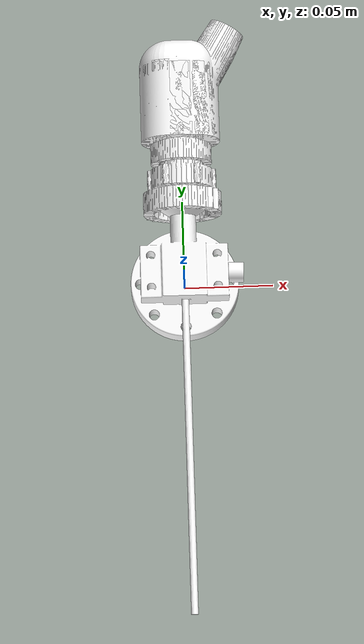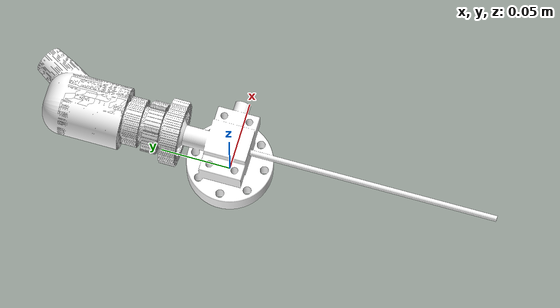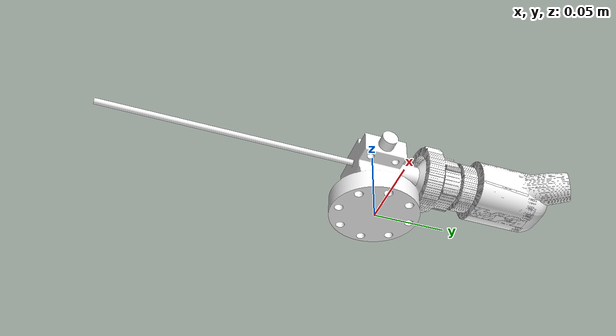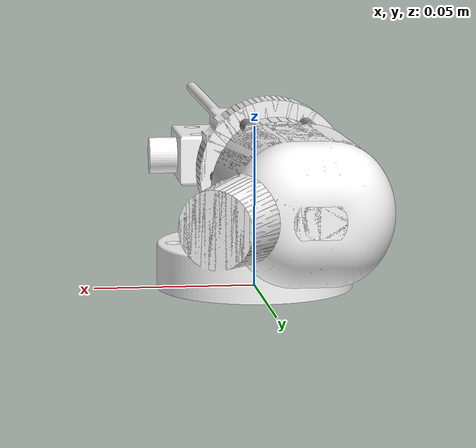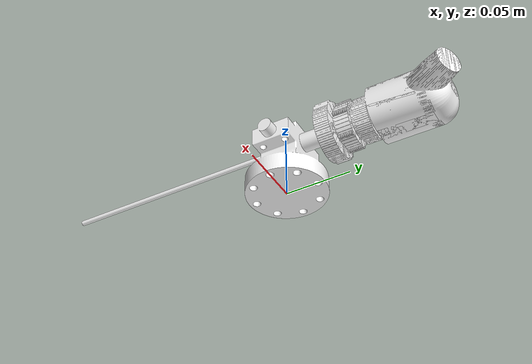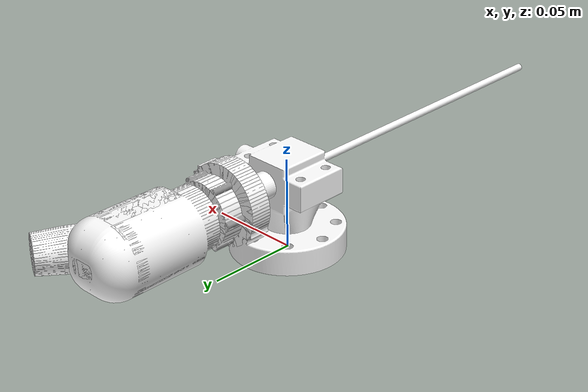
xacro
<?xml version="1.0"?>

<!-- Here we define the robot, we named it "endoscope" -->
<robot xmlns:xacro="http://www.ros.org/wiki/xacro" name="endoscope">

    <!--Import the endoscope macro -->
    <xacro:include filename="$(find storz_endoscope_description)/urdf/storz_endoscope_description.urdf.xacro"/>

    <!--  Arguments for the med7 macro  -->
    <xacro:arg name="endoscope_name" default="storz_endoscope"/>
    <xacro:arg name="robot_name" default="lbr"/>

    <!-- fix to world -->
    <link name="world"/>

    <!-- insert endoscope -->
    <xacro:storz_endoscope  endoscope_name="$(arg endoscope_name)" robot_name="$(arg robot_name)" parent="world"/>

</robot>

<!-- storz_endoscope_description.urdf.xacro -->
<robot xmlns:xacro="http://www.ros.org/wiki/xacro">

    <xacro:macro name="storz_endoscope" params="endoscope_name robot_name parent">

        <!-- include gazebo specifications -->
        <xacro:include filename="$(find storz_endoscope_description)/gazebo/storz_endoscope.gazebo.xacro" />

        <!--joint between {parent} and link_0-->
        <joint name="${parent}_${endoscope_name}_joint" type="fixed">
            <parent link="${parent}"/>
            <child link="${endoscope_name}_link_0"/>
            <origin xyz="0 0 0" rpy="0 0 1.57079632679"/>
        </joint>

        <!-- link 0 -->
        <link name="${endoscope_name}_link_0">
            <inertial>
                <origin rpy="0 0 0" xyz="0.05347530282631193 -0.0009866876037994033 0.03417463143575086"/>
                <mass value="1.5884453511086485"/>
                <inertia ixx="0.000641" ixy="9.6e-05" ixz="-0.000622" iyy="0.004145" iyz="1.2e-05" izz="0.003991"/>
            </inertial>
            <visual>
                <origin rpy="0 0 0" xyz="0 0 0"/>
                <geometry>
                    <mesh filename="package://storz_endoscope_description/meshes/visual/link_0.stl" scale="0.001 0.001 0.001"/>
                </geometry>
                <material name="white">
                    <color rgba="1.0 1.0 1.0 1.0"/>
                </material>
            </visual>
            <collision>
                <origin rpy="0 0 0" xyz="0 0 0"/>
                <geometry>
                <mesh filename="package://storz_endoscope_description/meshes/collision/link_0.stl" scale="0.001 0.001 0.001"/>
                </geometry>
            </collision>
        </link>

        <joint name="${endoscope_name}_joint_1" type="fixed">
            <origin rpy="0 0 0" xyz="-0.015 0.0 0.0415"/>
            <parent link="${endoscope_name}_link_0"/>
            <child link="${endoscope_name}_link_1"/>
        </joint>

        <!-- link 1 -->
        <link name="${endoscope_name}_link_1">
            <inertial>
                <origin rpy="0 0 0" xyz="-0.08761286703720295 1.6070339520327724e-16 2.081251837537934e-13"/>
                <mass value="0.017299976665697662"/>
                <inertia ixx="0.0" ixy="-0.0" ixz="-0.0" iyy="4.4e-05" iyz="-0.0" izz="4.4e-05"/>
            </inertial>
            <visual>
                <origin rpy="0 0 0" xyz="0.015 -0.0 -0.0415"/>
                <geometry>
                    <mesh filename="package://storz_endoscope_description/meshes/visual/link_1.stl" scale="0.001 0.001 0.001"/>
                </geometry>
                <material name="white">
                    <color rgba="1.0 1.0 1.0 1.0"/>
                </material>
            </visual>
            <collision>
                <origin rpy="0 0 0" xyz="0.015 -0.0 -0.0415"/>
                <geometry>
                    <mesh filename="package://storz_endoscope_description/meshes/collision/link_1.stl" scale="0.001 0.001 0.001"/>
                </geometry>
            </collision>
        </link>

        <joint name="${endoscope_name}_joint_cm" type="fixed">
            <origin rpy="1.57079632679 0 3.141592654" xyz="-0.1753 0.0 0.0"/>
            <parent link="${endoscope_name}_link_1"/>
            <child link="${endoscope_name}_link_cm"/>
        </joint>

        <!-- camera link -->
        <link name="${endoscope_name}_link_cm"/>

        <!-- optical frame https://answers.ros.org/question/232534/gazebo-camera-frame-is-inconsistent-with-rviz-opencv-convention/ -->
        <joint name="${endoscope_name}_joint_cm_optical" type="fixed">  <!-- add continuous joint to rotate image digitally -->
            <parent link="${endoscope_name}_link_cm"/>
            <child link="${endoscope_name}_link_cm_optical"/>
            <origin xyz="0 0 0" rpy="-1.57079632679 0 -1.57079632679"/>
            <!--axis xyz="0.0 0.0 0.01"/-->  <!-- rotate about the optical axis -->
        </joint>

        <link name="${endoscope_name}_link_cm_optical">
        </link>

        <!-- extensions -->
        <xacro:storz_endoscope_gazebo endoscope_name="${endoscope_name}" robot_name="${robot_name}"/>

    </xacro:macro>
</robot>
